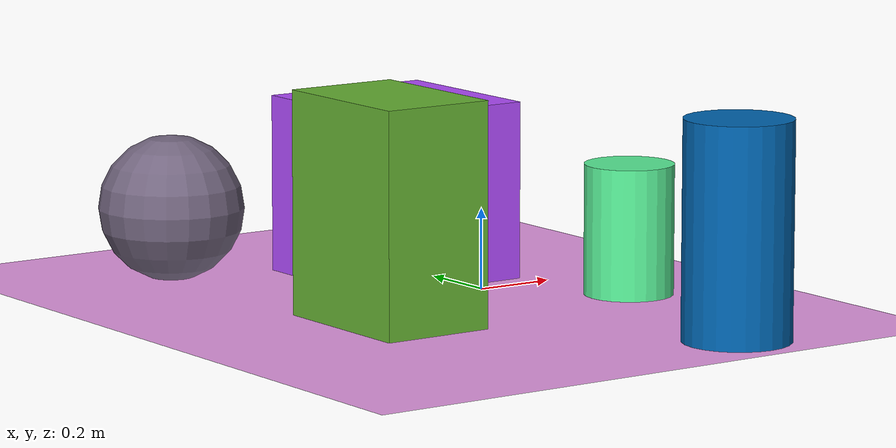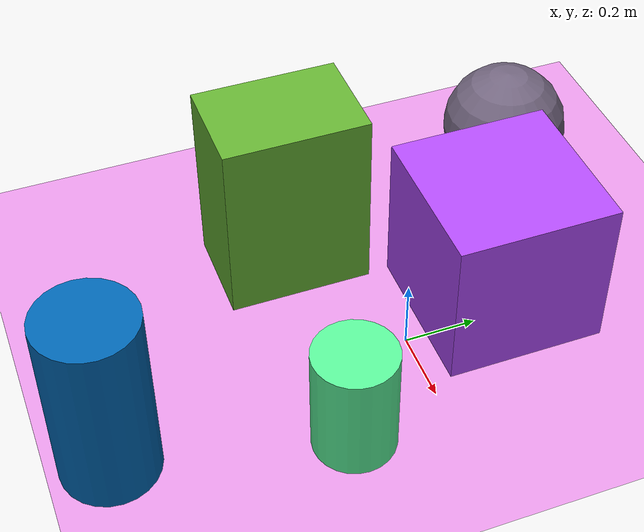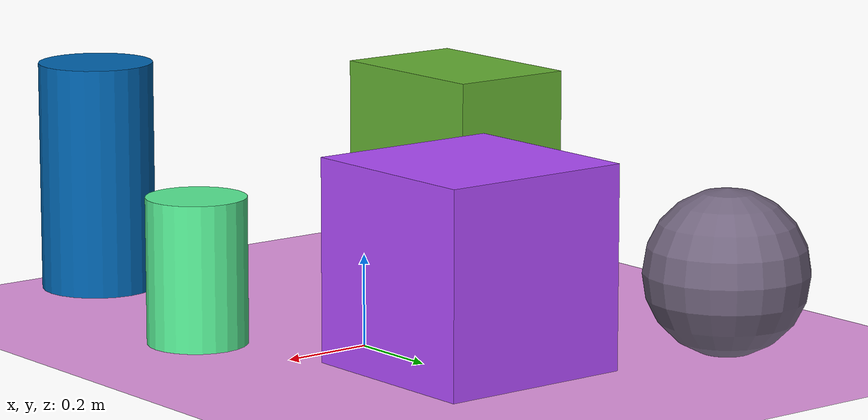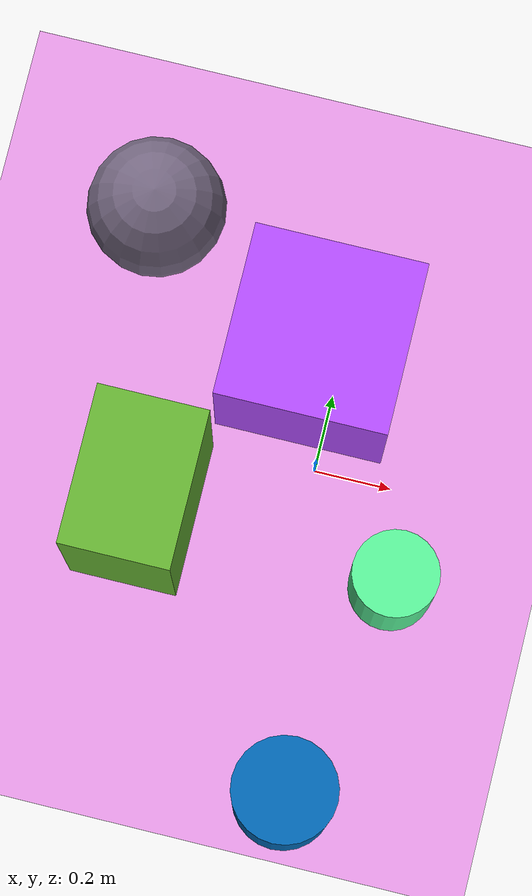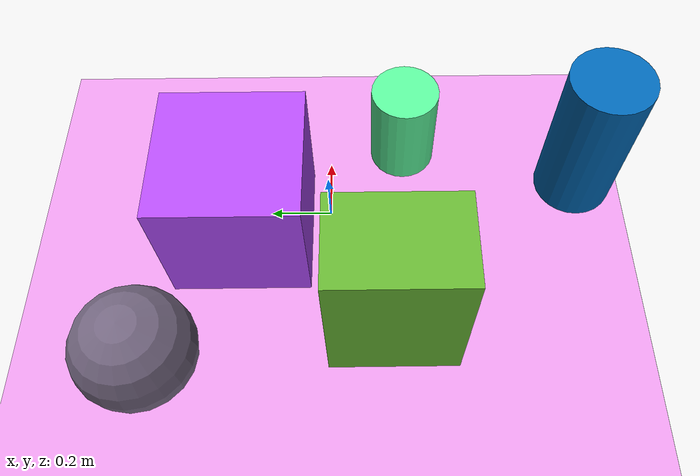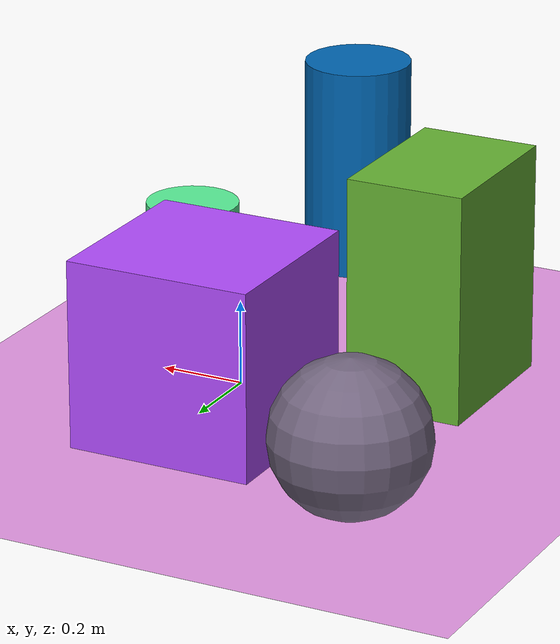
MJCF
<mujoco>
   <asset>
<texture type="skybox" builtin="gradient" rgb1="1.0 0.8 0.1" rgb2="0.8 0.6 0.8" width="256" height="256"/>
<texture name="flat_0" builtin="flat" rgb1="0.4 0.7 0.2" rgb2="0.4 0.7 0.2"  width="200" height="200"/>
<texture name="gradient_1" builtin="gradient" rgb1="0.9 0.6 0.4" rgb2="0.0 0.2 0.6" width="200" height="200"/>
<texture name="gradient_2" builtin="gradient" rgb1="0.4 1.0 0.5" rgb2="0.3 0.9 0.7" width="200" height="200"/>
<texture name="flat_3" builtin="flat" rgb1="0.7 0.3 1.0" rgb2="0.7 0.3 1.0"  width="200" height="200"/>
<texture name="flat_4" builtin="flat" rgb1="0.0 0.4 0.7" rgb2="0.0 0.4 0.7"  width="200" height="200"/><material name="flat_0_mat" reflectance="0" texture="flat_0" texuniform="true"/>
<material name="gradient_1_mat" reflectance="0" texture="gradient_1" texuniform="true"/>
<material name="gradient_2_mat" reflectance="0" texture="gradient_2" texuniform="true"/>
<material name="flat_3_mat" reflectance="0" texture="flat_3" texuniform="true"/>
<material name="flat_4_mat" reflectance="0" texture="flat_4" texuniform="true"/>
   </asset>

   <worldbody>
      <light diffuse=".9 .9 .9" pos="0 0 3" dir="0 0 -1"/>
     <geom type="plane" size="1 1 0.1" rgba="0.9 0.6 0.9 1"/>
<geom type="box" pos="-0.41 -0.2 0.27" size="0.14 0.2 0.27" material="flat_0_mat" />
<geom type="sphere" pos="-0.55 0.54 0.18" size="0.18 0.18 0.18" material="gradient_1_mat" />
<geom type="cylinder" pos="0.26 -0.25 0.16" size="0.11 0.16 0.16" material="gradient_2_mat" />
<geom type="box" pos="-0.06 0.28 0.22" size="0.22 0.22 0.22" material="flat_3_mat" />
<geom type="cylinder" pos="0.12 -0.84 0.26" size="0.13 0.26 0.26" material="flat_4_mat" /><camera euler="60 0 180" fovy="60" name="camera_a" pos="0 -1.5 1"></camera>   </worldbody>
</mujoco>
